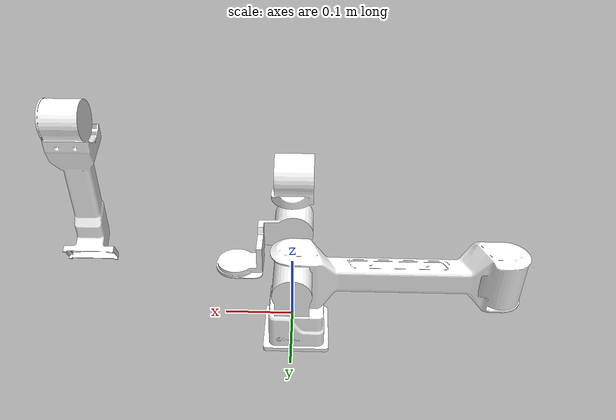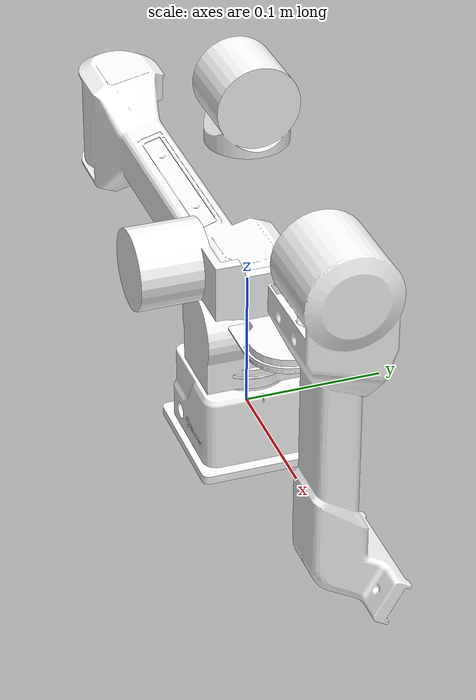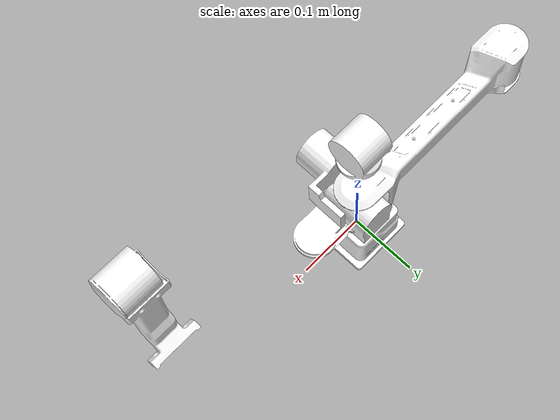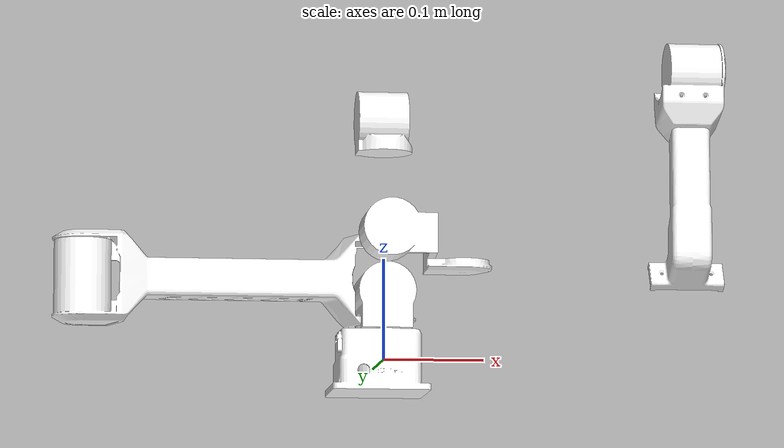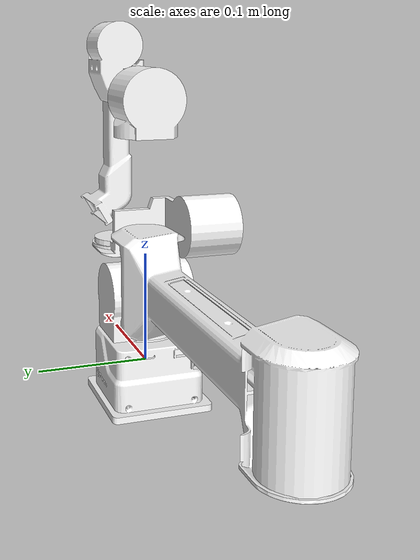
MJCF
<mujoco model="fangzhenjixiebi">
  <compiler angle="radian"/>

  <asset>
    <mesh name="base_link" content_type="model/stl" file="base_link.STL"/>
    <mesh name="1_Link" content_type="model/stl" file="1_Link.STL"/>
    <mesh name="2_Link" content_type="model/stl" file="2_Link.STL"/>
    <mesh name="3_Link" content_type="model/stl" file="3_Link.STL"/>
    <mesh name="4_Link" content_type="model/stl" file="4_Link.STL"/>
    <mesh name="5_Link" content_type="model/stl" file="5_Link.STL"/>
  </asset>

  <worldbody>
    <geom type="mesh" rgba="1 1 1 1" mesh="base_link"/>
    <body name="1_Link">
      <inertial pos="0 5e-06 0.0590654" quat="0.707107 0.707107 0 0" mass="0.240435" diaginertia="0.000186308 0.000164031 0.000128092"/>
      <joint name="1joint" pos="0 0 0" axis="0 0 1" range="-2.967 2.967" actuatorfrcrange="-9 9"/>
      <geom type="mesh" rgba="1 1 1 1" mesh="1_Link"/>
      <body name="2_Link" pos="0 0 0.065224" quat="0.707105 0.707108 0 0">
        <inertial pos="0.251877 -0.0121583 0.000522957" quat="0.495455 0.496263 0.503548 0.504665" mass="0.27896" diaginertia="0.00101012 0.000968578 0.00016357"/>
        <joint name="2joint" pos="0 0 0" axis="0 0 1" range="0 3.14" actuatorfrcrange="-9 9"/>
        <geom pos="0 0.012094 0" quat="1 0 0 0" type="mesh" rgba="1 1 1 1" mesh="2_Link"/>
        <body name="3_Link" pos="0.3 0 0.0005" quat="0.707105 0 0 0.707108">
          <inertial pos="0.0566283 0.190562 -0.00330663" quat="0.513715 0.466789 -0.510042 0.507998" mass="0.196496" diaginertia="0.000365387 0.000357218 7.49679e-05"/>
          <joint name="3joint" pos="0 0 0" axis="0 0 -1" range="0 3.14" actuatorfrcrange="-9 9"/>
          <geom type="mesh" rgba="1 1 1 1" mesh="3_Link"/>
          <body name="4_Link" pos="0.057369 0.22028 -0.000495" quat="0.707105 0 0 0.707108">
            <inertial pos="0.0683668 -0.0480245 0.00305266" quat="0.314468 0.759366 -0.143647 0.551216" mass="0.157398" diaginertia="0.000221164 0.000219057 6.08582e-05"/>
            <joint name="4joint" pos="0 0 0" axis="0 0 1" range="-1.57 1.518" actuatorfrcrange="-3 3"/>
            <geom type="mesh" rgba="1 1 1 1" mesh="4_Link"/>
            <body name="5_Link" pos="0.080666 -0.05857 0.00047555" quat="0.707105 -0.707108 0 0">
              <inertial pos="0.00107781 9.47221e-11 0.0546028" quat="0.998968 -2.28286e-07 0.0454145 -5.02154e-06" mass="0.148471" diaginertia="7.23521e-05 7.08257e-05 6.2135e-05"/>
              <joint name="5joint" pos="0 0 0" axis="0 0 1" range="-1.57 1.57" actuatorfrcrange="-3 3"/>
              <geom type="mesh" rgba="1 1 1 1" mesh="5_Link"/>
            </body>
          </body>
        </body>
      </body>
    </body>
  </worldbody>
      <contact>
    <exclude body1="4_Link" body2="6_Link"/>
  </contact>
</mujoco>
